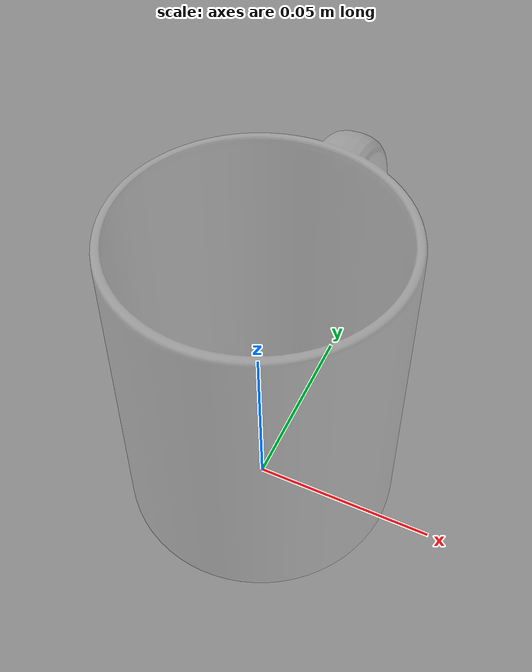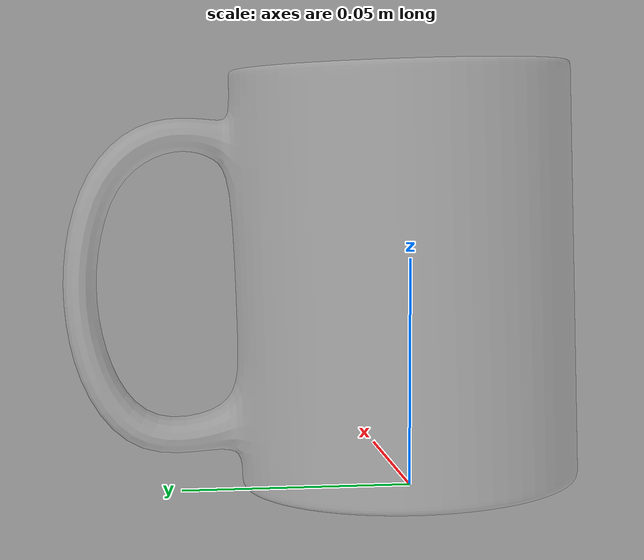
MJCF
<mujoco model="kettle-visual">
  <asset>
    <mesh file="meshes/mug.obj" name="kettle_mesh" scale="0.6 0.6 0.6"/>
  </asset>
  <worldbody>
    <body>
      <body name="object">
        <geom pos="0 0 0" mesh="kettle_mesh" type="mesh" rgba="0.8 0.8 0.8 0.3" conaffinity="0" contype="0" group="1" mass="0.0001"/>
      </body>
      <site rgba="0 0 0 0" size="0.005" pos="0 0 -0.085" name="bottom_site"/>
      <site rgba="0 0 0 0" size="0.005" pos="0 0 0.075" name="top_site"/>
      <site rgba="0 0 0 0" size="0.005" pos="0.025 0.025 0" name="horizontal_radius_site"/>
    </body>
  </worldbody>
</mujoco>
